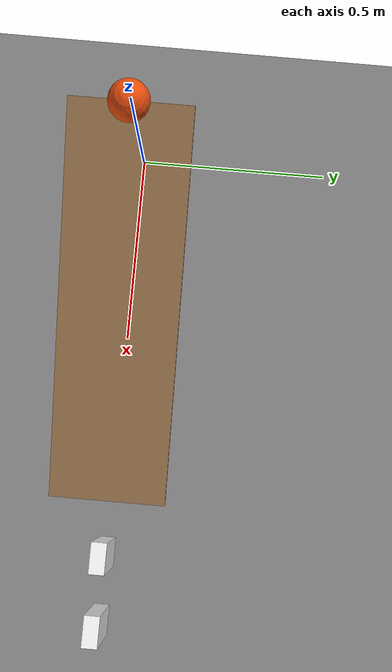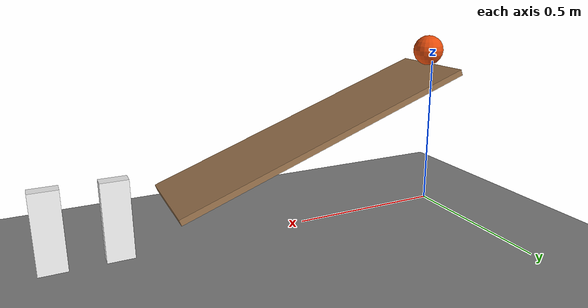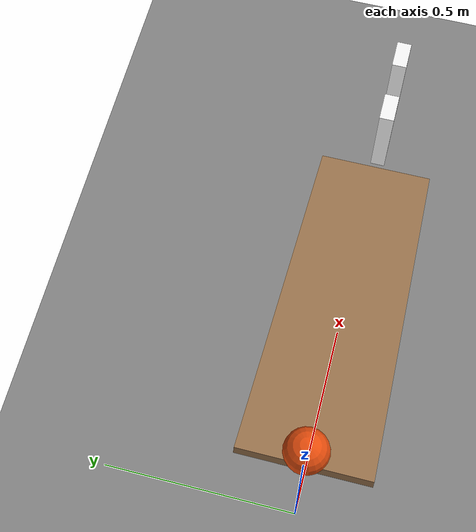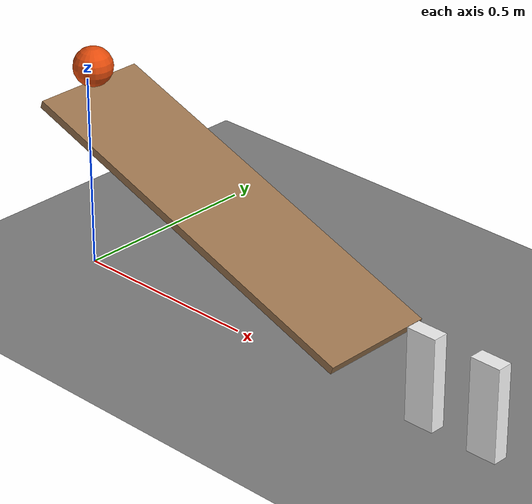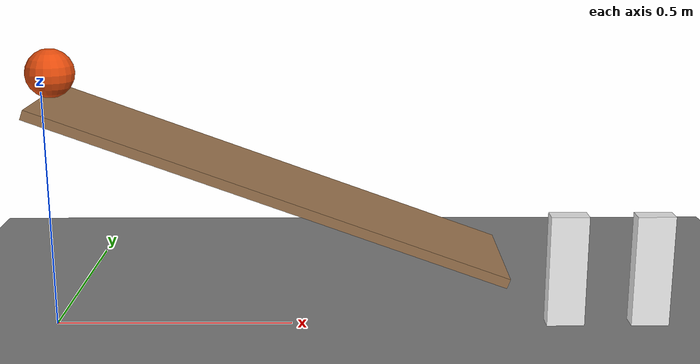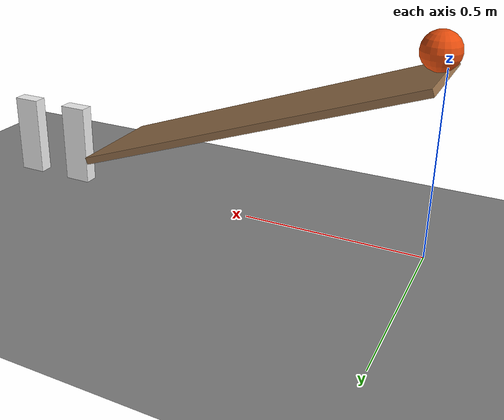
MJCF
<mujoco model="ramp_ball_and_two_dominoes">
  <compiler angle="radian"/>
  <option timestep="0.002"/>
  <worldbody>
    <geom name="floor" type="plane" size="6 6 0.1" friction="0.7 0 0"/>
    <body name="ramp1">
      <geom name="ramp1" type="box" pos="0.469846 0 0.311613" size="0.5 0.15 0.01" euler="0 0.349066 0" friction="0.7 0 0" solref="0.01 1" rgba="0.6 0.45 0.3 1"/>
    </body>
    <body name="ball1" pos="0.0205212 0 0.539005">
      <freejoint/>
      <geom name="ball1" type="sphere" pos="0 0 0" size="0.05" mass="0.2" condim="6" friction="0.7 0 0" solref="0.01 1" rgba="0.9 0.3 0.05 1"/>
    </body>
    <body name="domino1" pos="1.08311 0 0.12">
      <freejoint/>
      <geom name="domino1" type="box" pos="0 0 0" size="0.04 0.02 0.12" mass="0.25" friction="0.7 0 0" solref="0.01 1" rgba="0.95 0.95 0.95 1"/>
    </body>
    <body name="domino2" pos="1.26311 0 0.12">
      <freejoint/>
      <geom name="domino2" type="box" pos="0 0 0" size="0.04 0.02 0.12" mass="0.25" friction="0.7 0 0" solref="0.01 1" rgba="0.95 0.95 0.95 1"/>
    </body>
  </worldbody>
  <keyframe>
    <key name="start" qpos="0.0205212 0 0.539005 1 0 0 0 1.08311 0 0.12 1 0 0 0 1.26311 0 0.12 1 0 0 0" qvel="0 0 0 0 0 0 0 0 0 0 0 0 0 0 0 0 0 0"/>
  </keyframe>
</mujoco>
